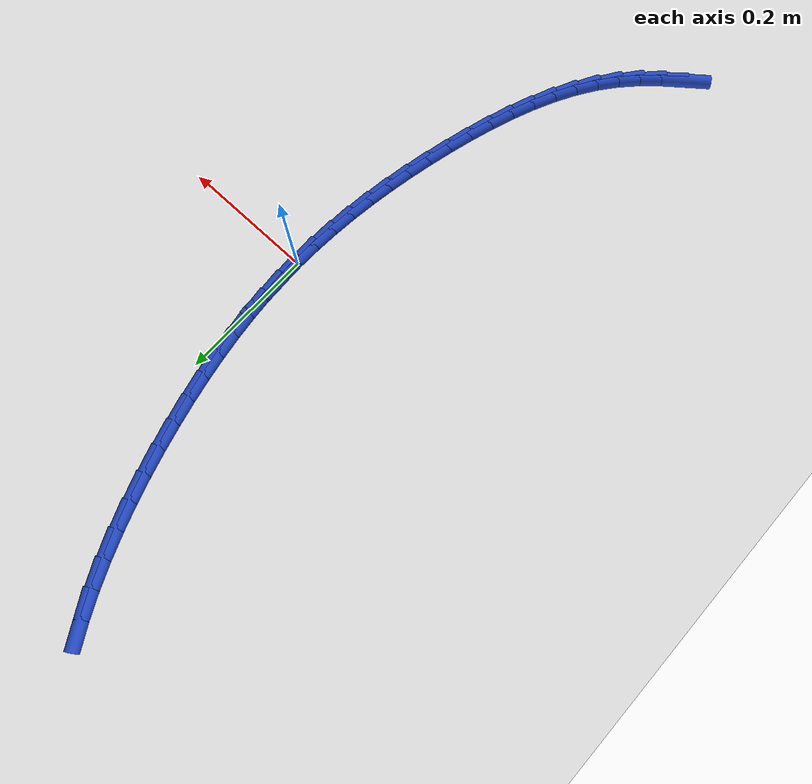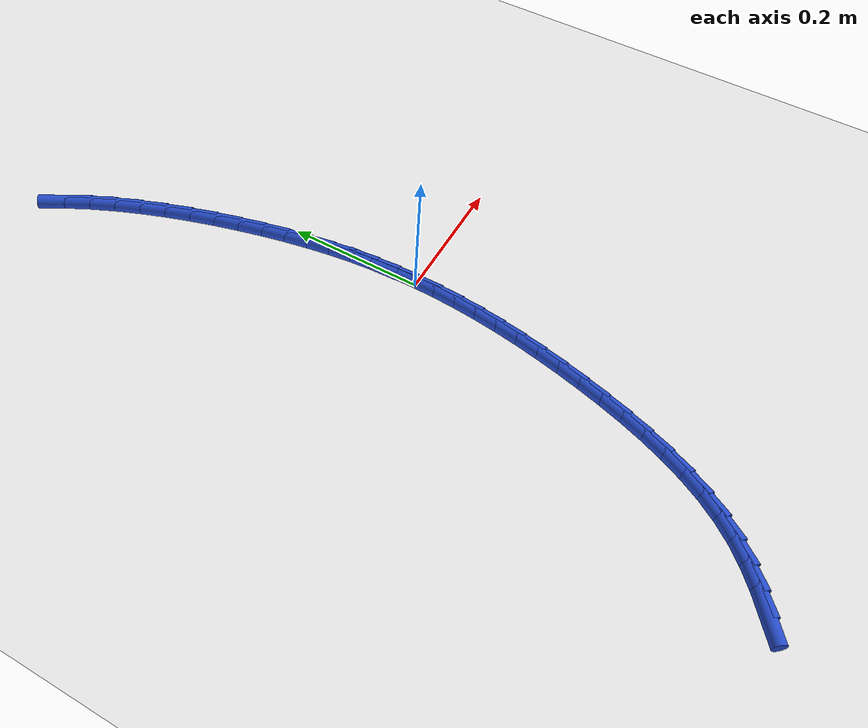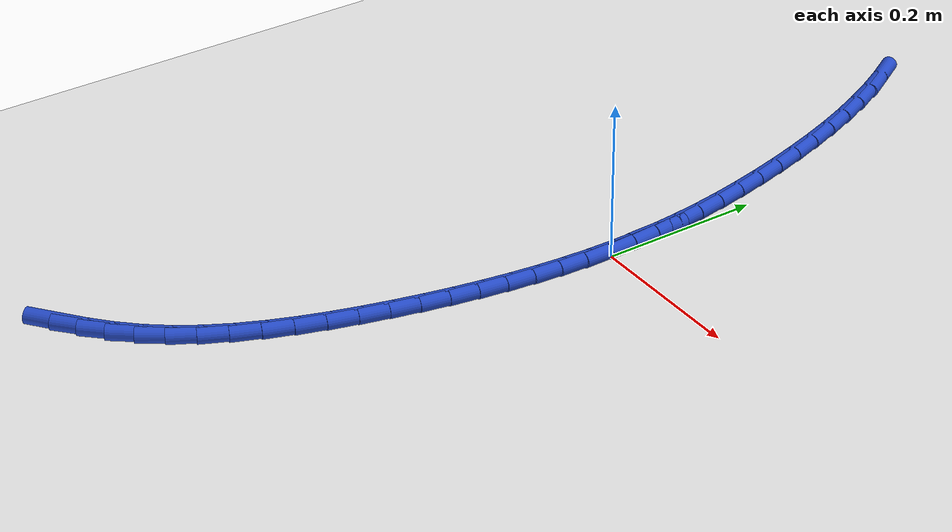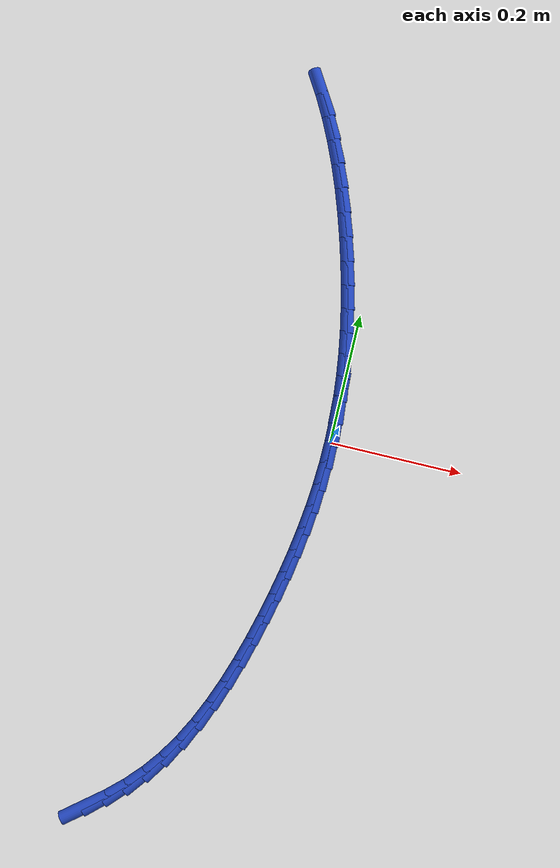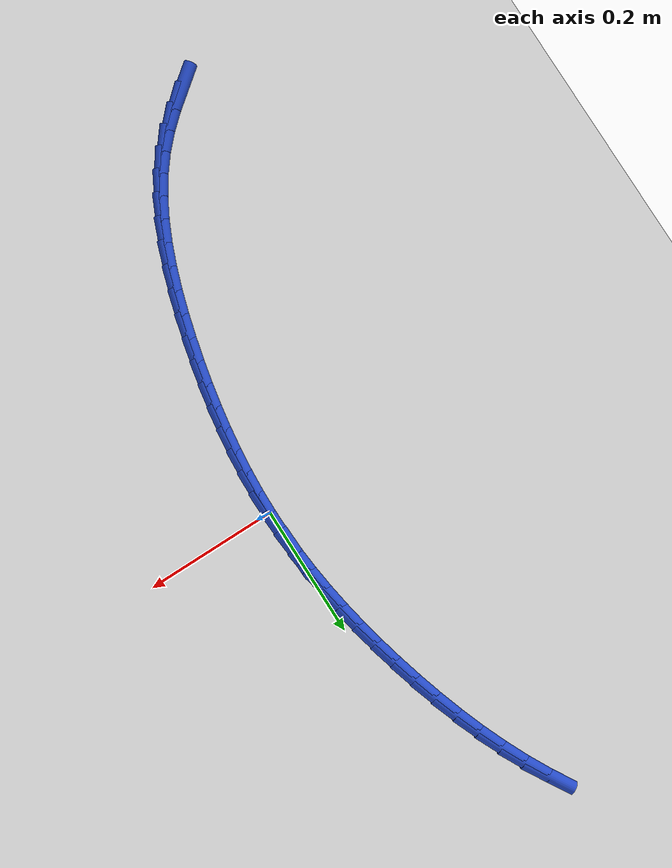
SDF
<sdf version="1.6">
 <world name="default">
  <model name="ground_plane">
   <static>1</static>
   <link name="link">
    <collision name="collision">
     <geometry><plane><normal>0 0 1</normal><size>100 100</size></plane></geometry>
     <surface><friction><ode><mu>100</mu><mu2>50</mu2></ode></friction></surface>
    </collision>
    <visual name="visual">
     <cast_shadows>0</cast_shadows>
     <geometry><plane><normal>0 0 1</normal><size>100 100</size></plane></geometry>
     <material>
      <script><uri>file://media/materials/scripts/gazebo.material</uri><name>Gazebo/WhiteGlow</name></script>
     </material>
    </visual>
   </link>
  </model>
  <model name="line">
   <link name="link_0">
    <pose>2.168404344971009e-17 0.0 0.01 0 1.57 -1.5553201995796697</pose>
    <collision name="collision">
     <geometry><cylinder><radius>0.01</radius><length>0.08</length></cylinder></geometry>
    </collision>
    <visual name="visual">
     <material>
      <script><name>Gazebo/Blue</name><uri>file://media/materials/scripts/gazebo.material</uri></script>
     </material>
     <geometry><cylinder><radius>0.01</radius><length>0.08</length></cylinder></geometry>
    </visual>
   </link>
   <link name="link_1">
    <pose>-0.0005262779702996634 0.03400307751037581 0.01 0 1.57 -1.5172467446629432</pose>
    <collision name="collision">
     <geometry><cylinder><radius>0.01</radius><length>0.08</length></cylinder></geometry>
    </collision>
    <visual name="visual">
     <material>
      <script><name>Gazebo/Blue</name><uri>file://media/materials/scripts/gazebo.material</uri></script>
     </material>
     <geometry><cylinder><radius>0.01</radius><length>0.08</length></cylinder></geometry>
    </visual>
   </link>
   <link name="link_2">
    <pose>-0.002347161801183219 0.0679742669972863 0.01 0 1.57 -1.4803630752536083</pose>
    <collision name="collision">
     <geometry><cylinder><radius>0.01</radius><length>0.08</length></cylinder></geometry>
    </collision>
    <visual name="visual">
     <material>
      <script><name>Gazebo/Blue</name><uri>file://media/materials/scripts/gazebo.material</uri></script>
     </material>
     <geometry><cylinder><radius>0.01</radius><length>0.08</length></cylinder></geometry>
    </visual>
   </link>
   <link name="link_3">
    <pose>-0.005433390352669076 0.10200832716290426 0.01 0 1.57 -1.4450492172705172</pose>
    <collision name="collision">
     <geometry><cylinder><radius>0.01</radius><length>0.08</length></cylinder></geometry>
    </collision>
    <visual name="visual">
     <material>
      <script><name>Gazebo/Blue</name><uri>file://media/materials/scripts/gazebo.material</uri></script>
     </material>
     <geometry><cylinder><radius>0.01</radius><length>0.08</length></cylinder></geometry>
    </visual>
   </link>
   <link name="link_4">
    <pose>-0.009755702484775664 0.13620001670940232 0.01 0 1.57 -1.4116292390843488</pose>
    <collision name="collision">
     <geometry><cylinder><radius>0.01</radius><length>0.08</length></cylinder></geometry>
    </collision>
    <visual name="visual">
     <material>
      <script><name>Gazebo/Blue</name><uri>file://media/materials/scripts/gazebo.material</uri></script>
     </material>
     <geometry><cylinder><radius>0.01</radius><length>0.08</length></cylinder></geometry>
    </visual>
   </link>
   <link name="link_5">
    <pose>-0.01528483705752141 0.1706440943389534 0.01 0 1.57 -1.380362491238148</pose>
    <collision name="collision">
     <geometry><cylinder><radius>0.01</radius><length>0.08</length></cylinder></geometry>
    </collision>
    <visual name="visual">
     <material>
      <script><name>Gazebo/Blue</name><uri>file://media/materials/scripts/gazebo.material</uri></script>
     </material>
     <geometry><cylinder><radius>0.01</radius><length>0.08</length></cylinder></geometry>
    </visual>
   </link>
   <link name="link_6">
    <pose>-0.021991532930924748 0.20543531875373003 0.01 0 1.57 -1.3514401848331339</pose>
    <collision name="collision">
     <geometry><cylinder><radius>0.01</radius><length>0.08</length></cylinder></geometry>
    </collision>
    <visual name="visual">
     <material>
      <script><name>Gazebo/Blue</name><uri>file://media/materials/scripts/gazebo.material</uri></script>
     </material>
     <geometry><cylinder><radius>0.01</radius><length>0.08</length></cylinder></geometry>
    </visual>
   </link>
   <link name="link_7">
    <pose>-0.029846528965004105 0.24066844865590512 0.01 0 1.57 -1.3249818757967182</pose>
    <collision name="collision">
     <geometry><cylinder><radius>0.01</radius><length>0.08</length></cylinder></geometry>
    </collision>
    <visual name="visual">
     <material>
      <script><name>Gazebo/Blue</name><uri>file://media/materials/scripts/gazebo.material</uri></script>
     </material>
     <geometry><cylinder><radius>0.01</radius><length>0.08</length></cylinder></geometry>
    </visual>
   </link>
   <link name="link_8">
    <pose>-0.03882065354741122 0.27643786391770175 0.01 0 1.57 -1.2997533426891432</pose>
    <collision name="collision">
     <geometry><cylinder><radius>0.01</radius><length>0.08</length></cylinder></geometry>
    </collision>
    <visual name="visual">
     <material>
      <script><name>Gazebo/Blue</name><uri>file://media/materials/scripts/gazebo.material</uri></script>
     </material>
     <geometry><cylinder><radius>0.01</radius><length>0.08</length></cylinder></geometry>
    </visual>
   </link>
   <link name="link_9">
    <pose>-0.04890809222452517 0.3127391102197503 0.01 0 1.57 -1.2725872218309806</pose>
    <collision name="collision">
     <geometry><cylinder><radius>0.01</radius><length>0.08</length></cylinder></geometry>
    </collision>
    <visual name="visual">
     <material>
      <script><name>Gazebo/Blue</name><uri>file://media/materials/scripts/gazebo.material</uri></script>
     </material>
     <geometry><cylinder><radius>0.01</radius><length>0.08</length></cylinder></geometry>
    </visual>
   </link>
   <link name="link_10">
    <pose>-0.0601574773369932 0.3493373454220084 0.01 0 1.57 -1.2427075002954544</pose>
    <collision name="collision">
     <geometry><cylinder><radius>0.01</radius><length>0.08</length></cylinder></geometry>
    </collision>
    <visual name="visual">
     <material>
      <script><name>Gazebo/Blue</name><uri>file://media/materials/scripts/gazebo.material</uri></script>
     </material>
     <geometry><cylinder><radius>0.01</radius><length>0.08</length></cylinder></geometry>
    </visual>
   </link>
   <link name="link_11">
    <pose>-0.07262518406984488 0.3859649640773 0.01 0 1.57 -1.2097056486750113</pose>
    <collision name="collision">
     <geometry><cylinder><radius>0.01</radius><length>0.08</length></cylinder></geometry>
    </collision>
    <visual name="visual">
     <material>
      <script><name>Gazebo/Blue</name><uri>file://media/materials/scripts/gazebo.material</uri></script>
     </material>
     <geometry><cylinder><radius>0.01</radius><length>0.08</length></cylinder></geometry>
    </visual>
   </link>
   <link name="link_12">
    <pose>-0.08636758760810971 0.4223543607384489 0.01 0 1.57 -1.1731120403888633</pose>
    <collision name="collision">
     <geometry><cylinder><radius>0.01</radius><length>0.08</length></cylinder></geometry>
    </collision>
    <visual name="visual">
     <material>
      <script><name>Gazebo/Blue</name><uri>file://media/materials/scripts/gazebo.material</uri></script>
     </material>
     <geometry><cylinder><radius>0.01</radius><length>0.08</length></cylinder></geometry>
    </visual>
   </link>
   <link name="link_13">
    <pose>-0.10144106313681722 0.458237929958279 0.01 0 1.57 -1.1323886352628987</pose>
    <collision name="collision">
     <geometry><cylinder><radius>0.01</radius><length>0.08</length></cylinder></geometry>
    </collision>
    <visual name="visual">
     <material>
      <script><name>Gazebo/Blue</name><uri>file://media/materials/scripts/gazebo.material</uri></script>
     </material>
     <geometry><cylinder><radius>0.01</radius><length>0.08</length></cylinder></geometry>
    </visual>
   </link>
   <link name="link_14">
    <pose>-0.11790198584099705 0.49334806628961436 0.01 0 1.57 -1.0869244574376047</pose>
    <collision name="collision">
     <geometry><cylinder><radius>0.01</radius><length>0.08</length></cylinder></geometry>
    </collision>
    <visual name="visual">
     <material>
      <script><name>Gazebo/Blue</name><uri>file://media/materials/scripts/gazebo.material</uri></script>
     </material>
     <geometry><cylinder><radius>0.01</radius><length>0.08</length></cylinder></geometry>
    </visual>
   </link>
   <link name="link_15">
    <pose>-0.1358067309056786 0.5274171642852787 0.01 0 1.57 -1.0360369138510355</pose>
    <collision name="collision">
     <geometry><cylinder><radius>0.01</radius><length>0.08</length></cylinder></geometry>
    </collision>
    <visual name="visual">
     <material>
      <script><name>Gazebo/Blue</name><uri>file://media/materials/scripts/gazebo.material</uri></script>
     </material>
     <geometry><cylinder><radius>0.01</radius><length>0.08</length></cylinder></geometry>
    </visual>
   </link>
   <link name="link_211">
    <pose>-0.2251655159275515 -0.5941230509112275 0.01 0 1.57 0.6679188162510458</pose>
    <collision name="collision">
     <geometry><cylinder><radius>0.01</radius><length>0.08</length></cylinder></geometry>
    </collision>
    <visual name="visual">
     <material>
      <script><name>Gazebo/Blue</name><uri>file://media/materials/scripts/gazebo.material</uri></script>
     </material>
     <geometry><cylinder><radius>0.01</radius><length>0.08</length></cylinder></geometry>
    </visual>
   </link>
   <link name="link_212">
    <pose>-0.199624772979915 -0.5739746669787997 0.01 0 1.57 0.7323208452698948</pose>
    <collision name="collision">
     <geometry><cylinder><radius>0.01</radius><length>0.08</length></cylinder></geometry>
    </collision>
    <visual name="visual">
     <material>
      <script><name>Gazebo/Blue</name><uri>file://media/materials/scripts/gazebo.material</uri></script>
     </material>
     <geometry><cylinder><radius>0.01</radius><length>0.08</length></cylinder></geometry>
    </visual>
   </link>
   <link name="link_213">
    <pose>-0.17558440751664076 -0.552359835115249 0.01 0 1.57 0.8125817730909582</pose>
    <collision name="collision">
     <geometry><cylinder><radius>0.01</radius><length>0.08</length></cylinder></geometry>
    </collision>
    <visual name="visual">
     <material>
      <script><name>Gazebo/Blue</name><uri>file://media/materials/scripts/gazebo.material</uri></script>
     </material>
     <geometry><cylinder><radius>0.01</radius><length>0.08</length></cylinder></geometry>
    </visual>
   </link>
   <link name="link_214">
    <pose>-0.1533032447724501 -0.5288331427064181 0.01 0 1.57 0.9055724367353993</pose>
    <collision name="collision">
     <geometry><cylinder><radius>0.01</radius><length>0.08</length></cylinder></geometry>
    </collision>
    <visual name="visual">
     <material>
      <script><name>Gazebo/Blue</name><uri>file://media/materials/scripts/gazebo.material</uri></script>
     </material>
     <geometry><cylinder><radius>0.01</radius><length>0.08</length></cylinder></geometry>
    </visual>
   </link>
   <link name="link_215">
    <pose>-0.13302272789494682 -0.5029819366642829 0.01 0 1.57 0.995198353921376</pose>
    <collision name="collision">
     <geometry><cylinder><radius>0.01</radius><length>0.08</length></cylinder></geometry>
    </collision>
    <visual name="visual">
     <material>
      <script><name>Gazebo/Blue</name><uri>file://media/materials/scripts/gazebo.material</uri></script>
     </material>
     <geometry><cylinder><radius>0.01</radius><length>0.08</length></cylinder></geometry>
    </visual>
   </link>
   <link name="link_216">
    <pose>-0.1147537859850091 -0.4748280071806682 0.01 0 1.57 1.0720363480989032</pose>
    <collision name="collision">
     <geometry><cylinder><radius>0.01</radius><length>0.08</length></cylinder></geometry>
    </collision>
    <visual name="visual">
     <material>
      <script><name>Gazebo/Blue</name><uri>file://media/materials/scripts/gazebo.material</uri></script>
     </material>
     <geometry><cylinder><radius>0.01</radius><length>0.08</length></cylinder></geometry>
    </visual>
   </link>
   <link name="link_217">
    <pose>-0.09834390268682397 -0.4447011854595974 0.01 0 1.57 1.1371744423818781</pose>
    <collision name="collision">
     <geometry><cylinder><radius>0.01</radius><length>0.08</length></cylinder></geometry>
    </collision>
    <visual name="visual">
     <material>
      <script><name>Gazebo/Blue</name><uri>file://media/materials/scripts/gazebo.material</uri></script>
     </material>
     <geometry><cylinder><radius>0.01</radius><length>0.08</length></cylinder></geometry>
    </visual>
   </link>
   <link name="link_218">
    <pose>-0.08363709236582217 -0.4129378411562795 0.01 0 1.57 1.1920034985468324</pose>
    <collision name="collision">
     <geometry><cylinder><radius>0.01</radius><length>0.08</length></cylinder></geometry>
    </collision>
    <visual name="visual">
     <material>
      <script><name>Gazebo/Blue</name><uri>file://media/materials/scripts/gazebo.material</uri></script>
     </material>
     <geometry><cylinder><radius>0.01</radius><length>0.08</length></cylinder></geometry>
    </visual>
   </link>
   <link name="link_219">
    <pose>-0.07047736938743415 -0.37987434392592234 0.01 0 1.57 1.2378158702131732</pose>
    <collision name="collision">
     <geometry><cylinder><radius>0.01</radius><length>0.08</length></cylinder></geometry>
    </collision>
    <visual name="visual">
     <material>
      <script><name>Gazebo/Blue</name><uri>file://media/materials/scripts/gazebo.material</uri></script>
     </material>
     <geometry><cylinder><radius>0.01</radius><length>0.08</length></cylinder></geometry>
    </visual>
   </link>
   <link name="link_220">
    <pose>-0.058708748117091224 -0.3458470634237363 0.01 0 1.57 1.275714058759108</pose>
    <collision name="collision">
     <geometry><cylinder><radius>0.01</radius><length>0.08</length></cylinder></geometry>
    </collision>
    <visual name="visual">
     <material>
      <script><name>Gazebo/Blue</name><uri>file://media/materials/scripts/gazebo.material</uri></script>
     </material>
     <geometry><cylinder><radius>0.01</radius><length>0.08</length></cylinder></geometry>
    </visual>
   </link>
   <link name="link_221">
    <pose>-0.04817524292022382 -0.31119236930492933 0.01 0 1.57 1.306577124954419</pose>
    <collision name="collision">
     <geometry><cylinder><radius>0.01</radius><length>0.08</length></cylinder></geometry>
    </collision>
    <visual name="visual">
     <material>
      <script><name>Gazebo/Blue</name><uri>file://media/materials/scripts/gazebo.material</uri></script>
     </material>
     <geometry><cylinder><radius>0.01</radius><length>0.08</length></cylinder></geometry>
    </visual>
   </link>
   <link name="link_222">
    <pose>-0.038720868162262626 -0.27624663122471016 0.01 0 1.57 1.3317674262903267</pose>
    <collision name="collision">
     <geometry><cylinder><radius>0.01</radius><length>0.08</length></cylinder></geometry>
    </collision>
    <visual name="visual">
     <material>
      <script><name>Gazebo/Blue</name><uri>file://media/materials/scripts/gazebo.material</uri></script>
     </material>
     <geometry><cylinder><radius>0.01</radius><length>0.08</length></cylinder></geometry>
    </visual>
   </link>
   <link name="link_223">
    <pose>-0.03020871031738069 -0.24131602895231824 0.01 0 1.57 1.356657952766593</pose>
    <collision name="collision">
     <geometry><cylinder><radius>0.01</radius><length>0.08</length></cylinder></geometry>
    </collision>
    <visual name="visual">
     <material>
      <script><name>Gazebo/Blue</name><uri>file://media/materials/scripts/gazebo.material</uri></script>
     </material>
     <geometry><cylinder><radius>0.01</radius><length>0.08</length></cylinder></geometry>
    </visual>
   </link>
   <link name="link_224">
    <pose>-0.022635968742522924 -0.20649445043900913 0.01 0 1.57 1.3834864818375487</pose>
    <collision name="collision">
     <geometry><cylinder><radius>0.01</radius><length>0.08</length></cylinder></geometry>
    </collision>
    <visual name="visual">
     <material>
      <script><name>Gazebo/Blue</name><uri>file://media/materials/scripts/gazebo.material</uri></script>
     </material>
     <geometry><cylinder><radius>0.01</radius><length>0.08</length></cylinder></geometry>
    </visual>
   </link>
   <link name="link_225">
    <pose>-0.016057375950301985 -0.17178471245809285 0.01 0 1.57 1.41230391022516</pose>
    <collision name="collision">
     <geometry><cylinder><radius>0.01</radius><length>0.08</length></cylinder></geometry>
    </collision>
    <visual name="visual">
     <material>
      <script><name>Gazebo/Blue</name><uri>file://media/materials/scripts/gazebo.material</uri></script>
     </material>
     <geometry><cylinder><radius>0.01</radius><length>0.08</length></cylinder></geometry>
    </visual>
   </link>
   <link name="link_226">
    <pose>-0.01052788497703932 -0.13718928270844358 0.01 0 1.57 1.4431413630514045</pose>
    <collision name="collision">
     <geometry><cylinder><radius>0.01</radius><length>0.08</length></cylinder></geometry>
    </collision>
    <visual name="visual">
     <material>
      <script><name>Gazebo/Blue</name><uri>file://media/materials/scripts/gazebo.material</uri></script>
     </material>
     <geometry><cylinder><radius>0.01</radius><length>0.08</length></cylinder></geometry>
    </visual>
   </link>
   <link name="link_227">
    <pose>-0.006102448859056354 -0.10271062888893548 0.01 0 1.57 1.4760146945453185</pose>
    <collision name="collision">
     <geometry><cylinder><radius>0.01</radius><length>0.08</length></cylinder></geometry>
    </collision>
    <visual name="visual">
     <material>
      <script><name>Gazebo/Blue</name><uri>file://media/materials/scripts/gazebo.material</uri></script>
     </material>
     <geometry><cylinder><radius>0.01</radius><length>0.08</length></cylinder></geometry>
    </visual>
   </link>
   <link name="link_228">
    <pose>-0.002836020632674449 -0.06835121869844199 0.01 0 1.57 1.5109204006918064</pose>
    <collision name="collision">
     <geometry><cylinder><radius>0.01</radius><length>0.08</length></cylinder></geometry>
    </collision>
    <visual name="visual">
     <material>
      <script><name>Gazebo/Blue</name><uri>file://media/materials/scripts/gazebo.material</uri></script>
     </material>
     <geometry><cylinder><radius>0.01</radius><length>0.08</length></cylinder></geometry>
    </visual>
   </link>
   <link name="link_229">
    <pose>-0.0007835533342152069 -0.034113519835838976 0.01 0 1.57 1.5478313678211584</pose>
    <collision name="collision">
     <geometry><cylinder><radius>0.01</radius><length>0.08</length></cylinder></geometry>
    </collision>
    <visual name="visual">
     <material>
      <script><name>Gazebo/Blue</name><uri>file://media/materials/scripts/gazebo.material</uri></script>
     </material>
     <geometry><cylinder><radius>0.01</radius><length>0.08</length></cylinder></geometry>
    </visual>
   </link>
   <link name="link_230">
    <pose>3.9898639947466563e-17 1.6653345369377348e-16 0.01 0 1.57 -1.55489994961581</pose>
    <collision name="collision">
     <geometry><cylinder><radius>0.01</radius><length>0.08</length></cylinder></geometry>
    </collision>
    <visual name="visual">
     <material>
      <script><name>Gazebo/Blue</name><uri>file://media/materials/scripts/gazebo.material</uri></script>
     </material>
     <geometry><cylinder><radius>0.01</radius><length>0.08</length></cylinder></geometry>
    </visual>
   </link>
   <link name="link_231">
    <pose>-0.0005403136663501441 0.03398687311020128 0.01 0 1.57 -1.5141746714529836</pose>
    <collision name="collision">
     <geometry><cylinder><radius>0.01</radius><length>0.08</length></cylinder></geometry>
    </collision>
    <visual name="visual">
     <material>
      <script><name>Gazebo/Blue</name><uri>file://media/materials/scripts/gazebo.material</uri></script>
     </material>
     <geometry><cylinder><radius>0.01</radius><length>0.08</length></cylinder></geometry>
    </visual>
   </link>
   <link name="link_232">
    <pose>-0.0024594473695871864 0.06784463179589012 0.01 0 1.57 -1.5345610227716475</pose>
    <collision name="collision">
     <geometry><cylinder><radius>0.01</radius><length>0.08</length></cylinder></geometry>
    </collision>
    <visual name="visual">
     <material>
      <script><name>Gazebo/Blue</name><uri>file://media/materials/scripts/gazebo.material</uri></script>
     </material>
     <geometry><cylinder><radius>0.01</radius><length>0.08</length></cylinder></geometry>
    </visual>
   </link>
  </model>
 </world>
</sdf>
